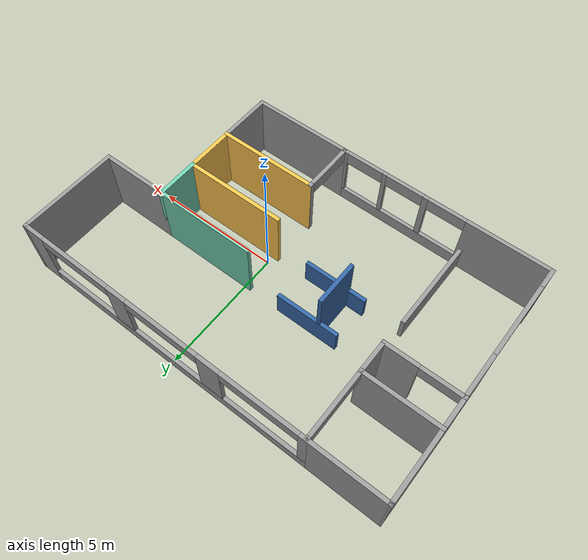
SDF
<?xml version='1.0'?>
<sdf version='1.7'>
  <model name='fablab_view'>
    <pose>-1.07641 0.415287 0 0 -0 0</pose>
    <link name='Wall_11'>
      <collision name='Wall_11_Collision'>
        <geometry>
          <box>
            <size>1.75 0.15 2.5</size>
          </box>
        </geometry>
        <pose>0 0 1.25 0 -0 0</pose>
      </collision>
      <visual name='Wall_11_Visual'>
        <pose>0 0 1.25 0 -0 0</pose>
        <geometry>
          <box>
            <size>1.75 0.15 2.5</size>
          </box>
        </geometry>
        <material>
          <script>
            <uri>file://media/materials/scripts/gazebo.material</uri>
            <name>Gazebo/Grey</name>
          </script>
          <ambient>0.435294 0.796078 0.67451 1</ambient>
        </material>
        <meta>
          <layer>0</layer>
        </meta>
      </visual>
      <pose>4.7545 0.019496 0 0 -0 1.5708</pose>
    </link>
    <link name='Wall_12'>
      <collision name='Wall_12_Collision'>
        <geometry>
          <box>
            <size>4 0.15 2.5</size>
          </box>
        </geometry>
        <pose>0 0 1.25 0 -0 0</pose>
      </collision>
      <visual name='Wall_12_Visual'>
        <pose>0 0 1.25 0 -0 0</pose>
        <geometry>
          <box>
            <size>4 0.15 2.5</size>
          </box>
        </geometry>
        <material>
          <script>
            <uri>file://media/materials/scripts/gazebo.material</uri>
            <name>Gazebo/Grey</name>
          </script>
          <ambient>0.435294 0.796078 0.67451 1</ambient>
        </material>
        <meta>
          <layer>0</layer>
        </meta>
      </visual>
      <pose>2.8295 0.819496 0 0 -0 3.14159</pose>
    </link>
    <link name='Wall_14'>
      <collision name='Wall_14_Collision'>
        <geometry>
          <box>
            <size>2.75 0.15 2.5</size>
          </box>
        </geometry>
        <pose>0 0 1.25 0 -0 0</pose>
      </collision>
      <visual name='Wall_14_Visual'>
        <pose>0 0 1.25 0 -0 0</pose>
        <geometry>
          <box>
            <size>2.75 0.15 2.5</size>
          </box>
        </geometry>
        <material>
          <script>
            <uri>file://media/materials/scripts/gazebo.material</uri>
            <name>Gazebo/Grey</name>
          </script>
          <ambient>1 1 1 1</ambient>
        </material>
        <meta>
          <layer>0</layer>
        </meta>
      </visual>
      <pose>6.0545 0.819496 0 0 -0 0</pose>
    </link>
    <link name='Wall_15'>
      <collision name='Wall_15_Collision'>
        <geometry>
          <box>
            <size>4 0.15 2.5</size>
          </box>
        </geometry>
        <pose>0 0 1.25 0 -0 0</pose>
      </collision>
      <visual name='Wall_15_Visual'>
        <pose>0 0 1.25 0 -0 0</pose>
        <geometry>
          <box>
            <size>4 0.15 2.5</size>
          </box>
        </geometry>
        <material>
          <script>
            <uri>file://media/materials/scripts/gazebo.material</uri>
            <name>Gazebo/Grey</name>
          </script>
          <ambient>1 1 1 1</ambient>
        </material>
        <meta>
          <layer>0</layer>
        </meta>
      </visual>
      <pose>7.3545 2.7445 0 0 -0 1.5708</pose>
    </link>
    <link name='Wall_16'>
      <pose>1.4295 4.6695 0 0 -0 3.14159</pose>
      <visual name='Wall_16_Visual_0'>
        <pose>-5.53886 0 1.25 0 -0 0</pose>
        <geometry>
          <box>
            <size>0.922275 0.15 2.5</size>
          </box>
        </geometry>
        <material>
          <script>
            <uri>file://media/materials/scripts/gazebo.material</uri>
            <name>Gazebo/Grey</name>
          </script>
          <ambient>1 1 1 1</ambient>
        </material>
        <meta>
          <layer>0</layer>
        </meta>
      </visual>
      <collision name='Wall_16_Collision_0'>
        <geometry>
          <box>
            <size>0.922275 0.15 2.5</size>
          </box>
        </geometry>
        <pose>-5.53886 0 1.25 0 -0 0</pose>
      </collision>
      <visual name='Wall_16_Visual_1'>
        <pose>0.461138 0 0.25 0 -0 0</pose>
        <geometry>
          <box>
            <size>11.0777 0.15 0.5</size>
          </box>
        </geometry>
        <material>
          <script>
            <uri>file://media/materials/scripts/gazebo.material</uri>
            <name>Gazebo/Grey</name>
          </script>
          <ambient>1 1 1 1</ambient>
        </material>
        <meta>
          <layer>0</layer>
        </meta>
      </visual>
      <collision name='Wall_16_Collision_1'>
        <geometry>
          <box>
            <size>11.0777 0.15 0.5</size>
          </box>
        </geometry>
        <pose>0.461138 0 0.25 0 -0 0</pose>
      </collision>
      <visual name='Wall_16_Visual_2'>
        <pose>-1.65957 0 1.5 0 -0 0</pose>
        <geometry>
          <box>
            <size>0.836307 0.15 2</size>
          </box>
        </geometry>
        <material>
          <script>
            <uri>file://media/materials/scripts/gazebo.material</uri>
            <name>Gazebo/Grey</name>
          </script>
          <ambient>1 1 1 1</ambient>
        </material>
        <meta>
          <layer>0</layer>
        </meta>
      </visual>
      <collision name='Wall_16_Collision_2'>
        <geometry>
          <box>
            <size>0.836307 0.15 2</size>
          </box>
        </geometry>
        <pose>-1.65957 0 1.5 0 -0 0</pose>
      </collision>
      <visual name='Wall_16_Visual_3'>
        <pose>2.21629 0 1.5 0 -0 0</pose>
        <geometry>
          <box>
            <size>0.915406 0.15 2</size>
          </box>
        </geometry>
        <material>
          <script>
            <uri>file://media/materials/scripts/gazebo.material</uri>
            <name>Gazebo/Grey</name>
          </script>
          <ambient>1 1 1 1</ambient>
        </material>
        <meta>
          <layer>0</layer>
        </meta>
      </visual>
      <collision name='Wall_16_Collision_3'>
        <geometry>
          <box>
            <size>0.915406 0.15 2</size>
          </box>
        </geometry>
        <pose>2.21629 0 1.5 0 -0 0</pose>
      </collision>
      <visual name='Wall_16_Visual_4'>
        <pose>5.83699 0 1.5 0 -0 0</pose>
        <geometry>
          <box>
            <size>0.326012 0.15 2</size>
          </box>
        </geometry>
        <material>
          <script>
            <uri>file://media/materials/scripts/gazebo.material</uri>
            <name>Gazebo/Grey</name>
          </script>
          <ambient>1 1 1 1</ambient>
        </material>
        <meta>
          <layer>0</layer>
        </meta>
      </visual>
      <collision name='Wall_16_Collision_4'>
        <geometry>
          <box>
            <size>0.326012 0.15 2</size>
          </box>
        </geometry>
        <pose>5.83699 0 1.5 0 -0 0</pose>
      </collision>
      <visual name='Wall_16_Visual_5'>
        <pose>-3.57773 0 2.25 0 -0 0</pose>
        <geometry>
          <box>
            <size>3 0.15 0.5</size>
          </box>
        </geometry>
        <material>
          <script>
            <uri>file://media/materials/scripts/gazebo.material</uri>
            <name>Gazebo/Grey</name>
          </script>
          <ambient>1 1 1 1</ambient>
        </material>
        <meta>
          <layer>0</layer>
        </meta>
      </visual>
      <collision name='Wall_16_Collision_5'>
        <geometry>
          <box>
            <size>3 0.15 0.5</size>
          </box>
        </geometry>
        <pose>-3.57773 0 2.25 0 -0 0</pose>
      </collision>
      <visual name='Wall_16_Visual_6'>
        <pose>0.258582 0 2.25 0 -0 0</pose>
        <geometry>
          <box>
            <size>3 0.15 0.5</size>
          </box>
        </geometry>
        <material>
          <script>
            <uri>file://media/materials/scripts/gazebo.material</uri>
            <name>Gazebo/Grey</name>
          </script>
          <ambient>1 1 1 1</ambient>
        </material>
        <meta>
          <layer>0</layer>
        </meta>
      </visual>
      <collision name='Wall_16_Collision_6'>
        <geometry>
          <box>
            <size>3 0.15 0.5</size>
          </box>
        </geometry>
        <pose>0.258582 0 2.25 0 -0 0</pose>
      </collision>
      <visual name='Wall_16_Visual_7'>
        <pose>4.17399 0 2.25 0 -0 0</pose>
        <geometry>
          <box>
            <size>3 0.15 0.5</size>
          </box>
        </geometry>
        <material>
          <script>
            <uri>file://media/materials/scripts/gazebo.material</uri>
            <name>Gazebo/Grey</name>
          </script>
          <ambient>1 1 1 1</ambient>
        </material>
        <meta>
          <layer>0</layer>
        </meta>
      </visual>
      <collision name='Wall_16_Collision_7'>
        <geometry>
          <box>
            <size>3 0.15 0.5</size>
          </box>
        </geometry>
        <pose>4.17399 0 2.25 0 -0 0</pose>
      </collision>
    </link>
    <link name='Wall_17'>
      <pose>-4.4955 2.7445 0 0 -0 -1.5708</pose>
      <visual name='Wall_17_Visual_0'>
        <pose>-1.90468 0 1.25 0 -0 0</pose>
        <geometry>
          <box>
            <size>0.190639 0.15 2.5</size>
          </box>
        </geometry>
        <material>
          <script>
            <uri>file://media/materials/scripts/gazebo.material</uri>
            <name>Gazebo/Grey</name>
          </script>
          <ambient>1 1 1 1</ambient>
        </material>
        <meta>
          <layer>0</layer>
        </meta>
      </visual>
      <collision name='Wall_17_Collision_0'>
        <geometry>
          <box>
            <size>0.190639 0.15 2.5</size>
          </box>
        </geometry>
        <pose>-1.90468 0 1.25 0 -0 0</pose>
      </collision>
      <visual name='Wall_17_Visual_1'>
        <pose>1.33216 0 1.25 0 -0 0</pose>
        <geometry>
          <box>
            <size>1.33569 0.15 2.5</size>
          </box>
        </geometry>
        <material>
          <script>
            <uri>file://media/materials/scripts/gazebo.material</uri>
            <name>Gazebo/Grey</name>
          </script>
          <ambient>1 1 1 1</ambient>
        </material>
        <meta>
          <layer>0</layer>
        </meta>
      </visual>
      <collision name='Wall_17_Collision_1'>
        <geometry>
          <box>
            <size>1.33569 0.15 2.5</size>
          </box>
        </geometry>
        <pose>1.33216 0 1.25 0 -0 0</pose>
      </collision>
      <visual name='Wall_17_Visual_2'>
        <pose>-0.572525 0 2.25 0 -0 0</pose>
        <geometry>
          <box>
            <size>2.47367 0.15 0.5</size>
          </box>
        </geometry>
        <material>
          <script>
            <uri>file://media/materials/scripts/gazebo.material</uri>
            <name>Gazebo/Grey</name>
          </script>
          <ambient>1 1 1 1</ambient>
        </material>
        <meta>
          <layer>0</layer>
        </meta>
      </visual>
      <collision name='Wall_17_Collision_2'>
        <geometry>
          <box>
            <size>2.47367 0.15 0.5</size>
          </box>
        </geometry>
        <pose>-0.572525 0 2.25 0 -0 0</pose>
      </collision>
    </link>
    <link name='Wall_30'>
      <pose>-7.34259 -1.98229 0 0 -0 1.5708</pose>
      <visual name='Wall_30_Visual_0'>
        <pose>-2.34687 0 1.25 0 -0 0</pose>
        <geometry>
          <box>
            <size>0.80625 0.15 2.5</size>
          </box>
        </geometry>
        <material>
          <script>
            <uri>file://media/materials/scripts/gazebo.material</uri>
            <name>Gazebo/Grey</name>
          </script>
          <ambient>1 1 1 1</ambient>
        </material>
        <meta>
          <layer>0</layer>
        </meta>
      </visual>
      <collision name='Wall_30_Collision_0'>
        <geometry>
          <box>
            <size>0.80625 0.15 2.5</size>
          </box>
        </geometry>
        <pose>-2.34687 0 1.25 0 -0 0</pose>
      </collision>
      <visual name='Wall_30_Visual_1'>
        <pose>1.90312 0 1.25 0 -0 0</pose>
        <geometry>
          <box>
            <size>1.69375 0.15 2.5</size>
          </box>
        </geometry>
        <material>
          <script>
            <uri>file://media/materials/scripts/gazebo.material</uri>
            <name>Gazebo/Grey</name>
          </script>
          <ambient>1 1 1 1</ambient>
        </material>
        <meta>
          <layer>0</layer>
        </meta>
      </visual>
      <collision name='Wall_30_Collision_1'>
        <geometry>
          <box>
            <size>1.69375 0.15 2.5</size>
          </box>
        </geometry>
        <pose>1.90312 0 1.25 0 -0 0</pose>
      </collision>
      <visual name='Wall_30_Visual_2'>
        <pose>-0.44375 0 2.25 0 -0 0</pose>
        <geometry>
          <box>
            <size>3 0.15 0.5</size>
          </box>
        </geometry>
        <material>
          <script>
            <uri>file://media/materials/scripts/gazebo.material</uri>
            <name>Gazebo/Grey</name>
          </script>
          <ambient>1 1 1 1</ambient>
        </material>
        <meta>
          <layer>0</layer>
        </meta>
      </visual>
      <collision name='Wall_30_Collision_2'>
        <geometry>
          <box>
            <size>3 0.15 0.5</size>
          </box>
        </geometry>
        <pose>-0.44375 0 2.25 0 -0 0</pose>
      </collision>
    </link>
    <link name='Wall_34'>
      <pose>-5.93333 0.816291 0 0 -0 3.14159</pose>
      <visual name='Wall_34_Visual_0'>
        <pose>-0.816427 0 1.25 0 -0 0</pose>
        <geometry>
          <box>
            <size>1.35715 0.15 2.5</size>
          </box>
        </geometry>
        <material>
          <script>
            <uri>file://media/materials/scripts/gazebo.material</uri>
            <name>Gazebo/Grey</name>
          </script>
          <ambient>1 1 1 1</ambient>
        </material>
        <meta>
          <layer>0</layer>
        </meta>
      </visual>
      <collision name='Wall_34_Collision_0'>
        <geometry>
          <box>
            <size>1.35715 0.15 2.5</size>
          </box>
        </geometry>
        <pose>-0.816427 0 1.25 0 -0 0</pose>
      </collision>
      <visual name='Wall_34_Visual_1'>
        <pose>1.42857 0 1.25 0 -0 0</pose>
        <geometry>
          <box>
            <size>0.132854 0.15 2.5</size>
          </box>
        </geometry>
        <material>
          <script>
            <uri>file://media/materials/scripts/gazebo.material</uri>
            <name>Gazebo/Grey</name>
          </script>
          <ambient>1 1 1 1</ambient>
        </material>
        <meta>
          <layer>0</layer>
        </meta>
      </visual>
      <collision name='Wall_34_Collision_1'>
        <geometry>
          <box>
            <size>0.132854 0.15 2.5</size>
          </box>
        </geometry>
        <pose>1.42857 0 1.25 0 -0 0</pose>
      </collision>
      <visual name='Wall_34_Visual_2'>
        <pose>0.612146 0 2.25 0 -0 0</pose>
        <geometry>
          <box>
            <size>1.5 0.15 0.5</size>
          </box>
        </geometry>
        <material>
          <script>
            <uri>file://media/materials/scripts/gazebo.material</uri>
            <name>Gazebo/Grey</name>
          </script>
          <ambient>1 1 1 1</ambient>
        </material>
        <meta>
          <layer>0</layer>
        </meta>
      </visual>
      <collision name='Wall_34_Collision_2'>
        <geometry>
          <box>
            <size>1.5 0.15 0.5</size>
          </box>
        </geometry>
        <pose>0.612146 0 2.25 0 -0 0</pose>
      </collision>
    </link>
    <link name='Wall_38'>
      <collision name='Wall_38_Collision'>
        <geometry>
          <box>
            <size>3.75 0.15 1</size>
          </box>
        </geometry>
        <pose>0 0 0.5 0 -0 0</pose>
      </collision>
      <visual name='Wall_38_Visual'>
        <pose>0 0 0.5 0 -0 0</pose>
        <geometry>
          <box>
            <size>3.75 0.15 1</size>
          </box>
        </geometry>
        <material>
          <script>
            <uri>file://media/materials/scripts/gazebo.material</uri>
            <name>Gazebo/Grey</name>
          </script>
          <ambient>1 1 1 1</ambient>
        </material>
        <meta>
          <layer>0</layer>
        </meta>
      </visual>
      <pose>-4.32559 -2.77929 0 0 -0 -1.5708</pose>
    </link>
    <link name='Wall_4'>
      <pose>-3.16071 -4.66967 0 0 -0 0</pose>
      <visual name='Wall_4_Visual_0'>
        <pose>-2.55675 0 1.25 0 -0 0</pose>
        <geometry>
          <box>
            <size>3.13649 0.15 2.5</size>
          </box>
        </geometry>
        <material>
          <script>
            <uri>file://media/materials/scripts/gazebo.material</uri>
            <name>Gazebo/Grey</name>
          </script>
          <ambient>1 1 1 1</ambient>
        </material>
        <meta>
          <layer>0</layer>
        </meta>
      </visual>
      <collision name='Wall_4_Collision_0'>
        <geometry>
          <box>
            <size>3.13649 0.15 2.5</size>
          </box>
        </geometry>
        <pose>-2.55675 0 1.25 0 -0 0</pose>
      </collision>
      <visual name='Wall_4_Visual_1'>
        <pose>1.56825 0 0.25 0 -0 0</pose>
        <geometry>
          <box>
            <size>5.11351 0.15 0.5</size>
          </box>
        </geometry>
        <material>
          <script>
            <uri>file://media/materials/scripts/gazebo.material</uri>
            <name>Gazebo/Grey</name>
          </script>
          <ambient>1 1 1 1</ambient>
        </material>
        <meta>
          <layer>0</layer>
        </meta>
      </visual>
      <collision name='Wall_4_Collision_1'>
        <geometry>
          <box>
            <size>5.11351 0.15 0.5</size>
          </box>
        </geometry>
        <pose>1.56825 0 0.25 0 -0 0</pose>
      </collision>
      <visual name='Wall_4_Visual_2'>
        <pose>0.61675 0 1.5 0 -0 0</pose>
        <geometry>
          <box>
            <size>0.210518 0.15 2</size>
          </box>
        </geometry>
        <material>
          <script>
            <uri>file://media/materials/scripts/gazebo.material</uri>
            <name>Gazebo/Grey</name>
          </script>
          <ambient>1 1 1 1</ambient>
        </material>
        <meta>
          <layer>0</layer>
        </meta>
      </visual>
      <collision name='Wall_4_Collision_2'>
        <geometry>
          <box>
            <size>0.210518 0.15 2</size>
          </box>
        </geometry>
        <pose>0.61675 0 1.5 0 -0 0</pose>
      </collision>
      <visual name='Wall_4_Visual_3'>
        <pose>2.30255 0 1.5 0 -0 0</pose>
        <geometry>
          <box>
            <size>0.161081 0.15 2</size>
          </box>
        </geometry>
        <material>
          <script>
            <uri>file://media/materials/scripts/gazebo.material</uri>
            <name>Gazebo/Grey</name>
          </script>
          <ambient>1 1 1 1</ambient>
        </material>
        <meta>
          <layer>0</layer>
        </meta>
      </visual>
      <collision name='Wall_4_Collision_3'>
        <geometry>
          <box>
            <size>0.161081 0.15 2</size>
          </box>
        </geometry>
        <pose>2.30255 0 1.5 0 -0 0</pose>
      </collision>
      <visual name='Wall_4_Visual_4'>
        <pose>4.00404 0 1.5 0 -0 0</pose>
        <geometry>
          <box>
            <size>0.24191 0.15 2</size>
          </box>
        </geometry>
        <material>
          <script>
            <uri>file://media/materials/scripts/gazebo.material</uri>
            <name>Gazebo/Grey</name>
          </script>
          <ambient>1 1 1 1</ambient>
        </material>
        <meta>
          <layer>0</layer>
        </meta>
      </visual>
      <collision name='Wall_4_Collision_4'>
        <geometry>
          <box>
            <size>0.24191 0.15 2</size>
          </box>
        </geometry>
        <pose>4.00404 0 1.5 0 -0 0</pose>
      </collision>
      <visual name='Wall_4_Visual_5'>
        <pose>-0.238509 0 2.25 0 -0 0</pose>
        <geometry>
          <box>
            <size>1.5 0.15 0.5</size>
          </box>
        </geometry>
        <material>
          <script>
            <uri>file://media/materials/scripts/gazebo.material</uri>
            <name>Gazebo/Grey</name>
          </script>
          <ambient>1 1 1 1</ambient>
        </material>
        <meta>
          <layer>0</layer>
        </meta>
      </visual>
      <collision name='Wall_4_Collision_5'>
        <geometry>
          <box>
            <size>1.5 0.15 0.5</size>
          </box>
        </geometry>
        <pose>-0.238509 0 2.25 0 -0 0</pose>
      </collision>
      <visual name='Wall_4_Visual_6'>
        <pose>1.47201 0 2.25 0 -0 0</pose>
        <geometry>
          <box>
            <size>1.5 0.15 0.5</size>
          </box>
        </geometry>
        <material>
          <script>
            <uri>file://media/materials/scripts/gazebo.material</uri>
            <name>Gazebo/Grey</name>
          </script>
          <ambient>1 1 1 1</ambient>
        </material>
        <meta>
          <layer>0</layer>
        </meta>
      </visual>
      <collision name='Wall_4_Collision_6'>
        <geometry>
          <box>
            <size>1.5 0.15 0.5</size>
          </box>
        </geometry>
        <pose>1.47201 0 2.25 0 -0 0</pose>
      </collision>
      <visual name='Wall_4_Visual_7'>
        <pose>3.13309 0 2.25 0 -0 0</pose>
        <geometry>
          <box>
            <size>1.5 0.15 0.5</size>
          </box>
        </geometry>
        <material>
          <script>
            <uri>file://media/materials/scripts/gazebo.material</uri>
            <name>Gazebo/Grey</name>
          </script>
          <ambient>1 1 1 1</ambient>
        </material>
        <meta>
          <layer>0</layer>
        </meta>
      </visual>
      <collision name='Wall_4_Collision_7'>
        <geometry>
          <box>
            <size>1.5 0.15 0.5</size>
          </box>
        </geometry>
        <pose>3.13309 0 2.25 0 -0 0</pose>
      </collision>
    </link>
    <link name='Wall_40'>
      <collision name='Wall_40_Collision'>
        <geometry>
          <box>
            <size>2.5 0.15 1</size>
          </box>
        </geometry>
        <pose>0 0 0.5 0 -0 0</pose>
      </collision>
      <visual name='Wall_40_Visual'>
        <pose>0 0 0.5 0 -0 0</pose>
        <geometry>
          <box>
            <size>2.5 0.15 1</size>
          </box>
        </geometry>
        <material>
          <script>
            <uri>file://media/materials/scripts/gazebo.material</uri>
            <name>Gazebo/Grey</name>
          </script>
          <ambient>0.203922 0.396078 0.643137 1</ambient>
        </material>
        <meta>
          <layer>0</layer>
        </meta>
      </visual>
      <pose>-1.63659 -0.814287 0 0 -0 0</pose>
    </link>
    <link name='Wall_42'>
      <collision name='Wall_42_Collision'>
        <geometry>
          <box>
            <size>3 0.15 2.5</size>
          </box>
        </geometry>
        <pose>0 0 1.25 0 -0 0</pose>
      </collision>
      <visual name='Wall_42_Visual'>
        <pose>0 0 1.25 0 -0 0</pose>
        <geometry>
          <box>
            <size>3 0.15 2.5</size>
          </box>
        </geometry>
        <material>
          <script>
            <uri>file://media/materials/scripts/gazebo.material</uri>
            <name>Gazebo/Grey</name>
          </script>
          <ambient>1 1 1 1</ambient>
        </material>
        <meta>
          <layer>0</layer>
        </meta>
      </visual>
      <pose>-5.9205 4.6695 0 0 -0 3.14159</pose>
    </link>
    <link name='Wall_43'>
      <collision name='Wall_43_Collision'>
        <geometry>
          <box>
            <size>3.9861 0.15 2.5</size>
          </box>
        </geometry>
        <pose>0 0 1.25 0 -0 0</pose>
      </collision>
      <visual name='Wall_43_Visual'>
        <pose>0 0 1.25 0 -0 0</pose>
        <geometry>
          <box>
            <size>3.9861 0.15 2.5</size>
          </box>
        </geometry>
        <material>
          <script>
            <uri>file://media/materials/scripts/gazebo.material</uri>
            <name>Gazebo/Grey</name>
          </script>
          <ambient>1 1 1 1</ambient>
        </material>
        <meta>
          <layer>0</layer>
        </meta>
      </visual>
      <pose>-7.34991 2.75145 0 0 -0 -1.5731</pose>
    </link>
    <link name='Wall_45'>
      <collision name='Wall_45_Collision'>
        <geometry>
          <box>
            <size>3 0.15 2.5</size>
          </box>
        </geometry>
        <pose>0 0 1.25 0 -0 0</pose>
      </collision>
      <visual name='Wall_45_Visual'>
        <pose>0 0 1.25 0 -0 0</pose>
        <geometry>
          <box>
            <size>3 0.15 2.5</size>
          </box>
        </geometry>
        <material>
          <script>
            <uri>file://media/materials/scripts/gazebo.material</uri>
            <name>Gazebo/Grey</name>
          </script>
          <ambient>1 1 1 1</ambient>
        </material>
        <meta>
          <layer>0</layer>
        </meta>
      </visual>
      <pose>-5.9241 2.01165 0 0 -0 3.14159</pose>
    </link>
    <link name='Wall_47'>
      <collision name='Wall_47_Collision'>
        <geometry>
          <box>
            <size>2.5 0.15 1</size>
          </box>
        </geometry>
        <pose>0 0 0.5 0 -0 0</pose>
      </collision>
      <visual name='Wall_47_Visual'>
        <pose>0 0 0.5 0 -0 0</pose>
        <geometry>
          <box>
            <size>2.5 0.15 1</size>
          </box>
        </geometry>
        <material>
          <script>
            <uri>file://media/materials/scripts/gazebo.material</uri>
            <name>Gazebo/Grey</name>
          </script>
          <ambient>0.203922 0.396078 0.643137 1</ambient>
        </material>
        <meta>
          <layer>0</layer>
        </meta>
      </visual>
      <pose>-1.65359 0.830713 0 0 -0 3.14159</pose>
    </link>
    <link name='Wall_49'>
      <collision name='Wall_49_Collision'>
        <geometry>
          <box>
            <size>1.75 0.15 2.5</size>
          </box>
        </geometry>
        <pose>0 0 1.25 0 -0 0</pose>
      </collision>
      <visual name='Wall_49_Visual'>
        <pose>0 0 1.25 0 -0 0</pose>
        <geometry>
          <box>
            <size>1.75 0.15 2.5</size>
          </box>
        </geometry>
        <material>
          <script>
            <uri>file://media/materials/scripts/gazebo.material</uri>
            <name>Gazebo/Grey</name>
          </script>
          <ambient>0.203922 0.396078 0.643137 1</ambient>
        </material>
        <meta>
          <layer>0</layer>
        </meta>
      </visual>
      <pose>-2.13815 0.007319 0 0 -0 -1.5708</pose>
    </link>
    <link name='Wall_5'>
      <pose>0.9045 -3.65009 0 0 -0 1.5708</pose>
      <visual name='Wall_5_Visual_0'>
        <pose>-1.05133 0 1.25 0 -0 0</pose>
        <geometry>
          <box>
            <size>0.086513 0.15 2.5</size>
          </box>
        </geometry>
        <material>
          <script>
            <uri>file://media/materials/scripts/gazebo.material</uri>
            <name>Gazebo/Grey</name>
          </script>
          <ambient>1 1 1 1</ambient>
        </material>
        <meta>
          <layer>0</layer>
        </meta>
      </visual>
      <collision name='Wall_5_Collision_0'>
        <geometry>
          <box>
            <size>0.086513 0.15 2.5</size>
          </box>
        </geometry>
        <pose>-1.05133 0 1.25 0 -0 0</pose>
      </collision>
      <visual name='Wall_5_Visual_1'>
        <pose>1.00066 0 1.25 0 -0 0</pose>
        <geometry>
          <box>
            <size>0.187847 0.15 2.5</size>
          </box>
        </geometry>
        <material>
          <script>
            <uri>file://media/materials/scripts/gazebo.material</uri>
            <name>Gazebo/Grey</name>
          </script>
          <ambient>1 1 1 1</ambient>
        </material>
        <meta>
          <layer>0</layer>
        </meta>
      </visual>
      <collision name='Wall_5_Collision_1'>
        <geometry>
          <box>
            <size>0.187847 0.15 2.5</size>
          </box>
        </geometry>
        <pose>1.00066 0 1.25 0 -0 0</pose>
      </collision>
      <visual name='Wall_5_Visual_2'>
        <pose>-0.050667 0 2.25 0 -0 0</pose>
        <geometry>
          <box>
            <size>1.91481 0.15 0.5</size>
          </box>
        </geometry>
        <material>
          <script>
            <uri>file://media/materials/scripts/gazebo.material</uri>
            <name>Gazebo/Grey</name>
          </script>
          <ambient>1 1 1 1</ambient>
        </material>
        <meta>
          <layer>0</layer>
        </meta>
      </visual>
      <collision name='Wall_5_Collision_2'>
        <geometry>
          <box>
            <size>1.91481 0.15 0.5</size>
          </box>
        </geometry>
        <pose>-0.050667 0 2.25 0 -0 0</pose>
      </collision>
    </link>
    <link name='Wall_51'>
      <collision name='Wall_51_Collision'>
        <geometry>
          <box>
            <size>2.189 0.15 2.5</size>
          </box>
        </geometry>
        <pose>0 0 1.25 0 -0 0</pose>
      </collision>
      <visual name='Wall_51_Visual'>
        <pose>0 0 1.25 0 -0 0</pose>
        <geometry>
          <box>
            <size>2.189 0.15 2.5</size>
          </box>
        </geometry>
        <material>
          <script>
            <uri>file://media/materials/scripts/gazebo.material</uri>
            <name>Gazebo/Grey</name>
          </script>
          <ambient>1 1 1 1</ambient>
        </material>
        <meta>
          <layer>0</layer>
        </meta>
      </visual>
      <pose>4.7545 -3.65 0 0 -0 -1.5708</pose>
    </link>
    <link name='Wall_52'>
      <collision name='Wall_52_Collision'>
        <geometry>
          <box>
            <size>4 0.15 2.5</size>
          </box>
        </geometry>
        <pose>0 0 1.25 0 -0 0</pose>
      </collision>
      <visual name='Wall_52_Visual'>
        <pose>0 0 1.25 0 -0 0</pose>
        <geometry>
          <box>
            <size>4 0.15 2.5</size>
          </box>
        </geometry>
        <material>
          <script>
            <uri>file://media/materials/scripts/gazebo.material</uri>
            <name>Gazebo/Grey</name>
          </script>
          <ambient>1 1 1 1</ambient>
        </material>
        <meta>
          <layer>0</layer>
        </meta>
      </visual>
      <pose>2.8295 -4.6695 0 0 -0 3.14159</pose>
    </link>
    <link name='Wall_6'>
      <collision name='Wall_6_Collision'>
        <geometry>
          <box>
            <size>4 0.15 2.5</size>
          </box>
        </geometry>
        <pose>0 0 1.25 0 -0 0</pose>
      </collision>
      <visual name='Wall_6_Visual'>
        <pose>0 0 1.25 0 -0 0</pose>
        <geometry>
          <box>
            <size>4 0.15 2.5</size>
          </box>
        </geometry>
        <material>
          <script>
            <uri>file://media/materials/scripts/gazebo.material</uri>
            <name>Gazebo/Grey</name>
          </script>
          <ambient>1 0.764706 0.305882 1</ambient>
        </material>
        <meta>
          <layer>0</layer>
        </meta>
      </visual>
      <pose>2.8295 -2.6305 0 0 -0 0</pose>
    </link>
    <link name='Wall_7'>
      <collision name='Wall_7_Collision'>
        <geometry>
          <box>
            <size>2 0.15 2.5</size>
          </box>
        </geometry>
        <pose>0 0 1.25 0 -0 0</pose>
      </collision>
      <visual name='Wall_7_Visual'>
        <pose>0 0 1.25 0 -0 0</pose>
        <geometry>
          <box>
            <size>2 0.15 2.5</size>
          </box>
        </geometry>
        <material>
          <script>
            <uri>file://media/materials/scripts/gazebo.material</uri>
            <name>Gazebo/Grey</name>
          </script>
          <ambient>1 0.764706 0.305882 1</ambient>
        </material>
        <meta>
          <layer>0</layer>
        </meta>
      </visual>
      <pose>4.7545 -1.7055 0 0 -0 1.5708</pose>
    </link>
    <link name='Wall_8'>
      <collision name='Wall_8_Collision'>
        <geometry>
          <box>
            <size>4 0.15 2.5</size>
          </box>
        </geometry>
        <pose>0 0 1.25 0 -0 0</pose>
      </collision>
      <visual name='Wall_8_Visual'>
        <pose>0 0 1.25 0 -0 0</pose>
        <geometry>
          <box>
            <size>4 0.15 2.5</size>
          </box>
        </geometry>
        <material>
          <script>
            <uri>file://media/materials/scripts/gazebo.material</uri>
            <name>Gazebo/Grey</name>
          </script>
          <ambient>1 0.764706 0.305882 1</ambient>
        </material>
        <meta>
          <layer>0</layer>
        </meta>
      </visual>
      <pose>2.8295 -0.780504 0 0 -0 3.14159</pose>
    </link>
    <static>1</static>
  </model>
</sdf>
